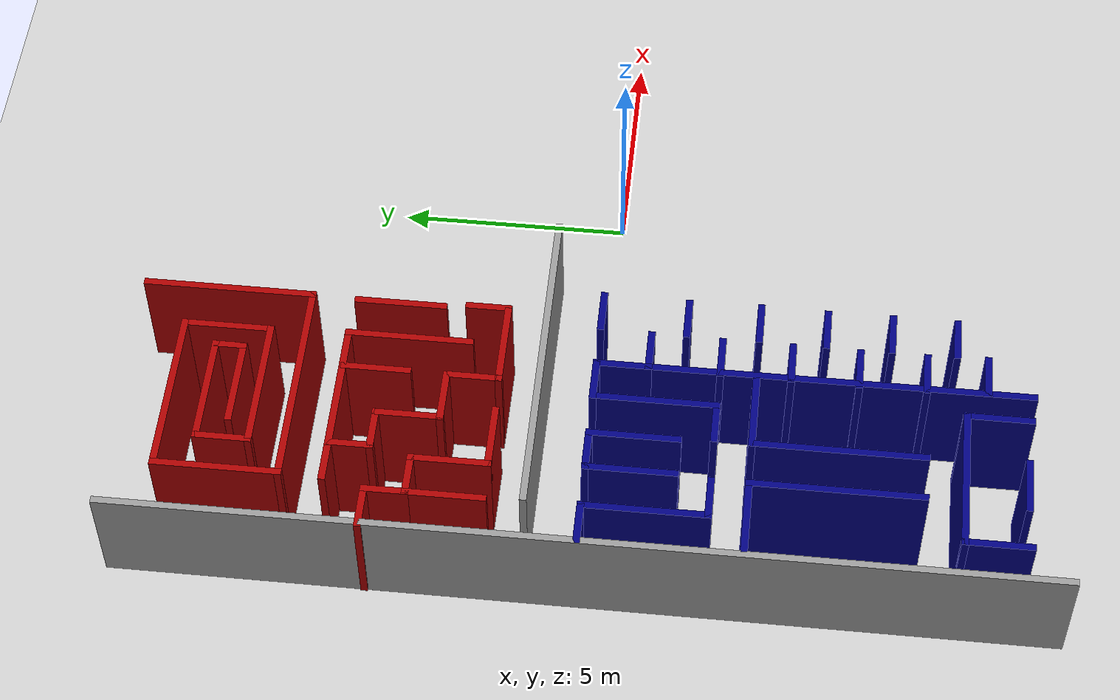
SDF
<sdf version="1.7">
 <world name="default">
  <model name="ground_plane">
   <static>1</static>
   <link name="link">
    <collision name="collision">
     <geometry><plane><normal>0 0 1</normal><size>100 100</size></plane></geometry>
     <surface><friction><ode><mu>100</mu><mu2>50</mu2></ode></friction></surface>
    </collision>
    <visual name="visual">
     <cast_shadows>0</cast_shadows>
     <geometry><plane><normal>0 0 1</normal><size>100 100</size></plane></geometry>
     <material>
      <script><uri>file://media/materials/scripts/gazebo.material</uri><name>Gazebo/Grey</name></script>
     </material>
    </visual>
   </link>
  </model>
  <model name="labyrinthe">
   <pose>-0.001061 -0.00174 0 0 -0 0</pose>
   <link name="Wall_100">
    <collision name="Wall_100_Collision">
     <geometry><box><size>1 0.15 2.5</size></box></geometry>
     <pose>0 0 1.25 0 -0 0</pose>
    </collision>
    <visual name="Wall_100_Visual">
     <pose>0 0 1.25 0 -0 0</pose>
     <geometry><box><size>1 0.15 2.5</size></box></geometry>
     <material>
      <script><uri>file://media/materials/scripts/gazebo.material</uri><name>Gazebo/Grey</name></script>
      <ambient>0.666667 0 0 1</ambient>
     </material>
     <meta><layer>0</layer></meta>
    </visual>
    <pose>-4.27476 2.53254 0 0 -0 1.5708</pose>
   </link>
   <link name="Wall_102">
    <collision name="Wall_102_Collision">
     <geometry><box><size>2 0.15 2.5</size></box></geometry>
     <pose>0 0 1.25 0 -0 0</pose>
    </collision>
    <visual name="Wall_102_Visual">
     <pose>0 0 1.25 0 -0 0</pose>
     <geometry><box><size>2 0.15 2.5</size></box></geometry>
     <material>
      <script><uri>file://media/materials/scripts/gazebo.material</uri><name>Gazebo/Grey</name></script>
      <ambient>0.666667 0 0 1</ambient>
     </material>
     <meta><layer>0</layer></meta>
    </visual>
    <pose>-5.19976 2.10754 0 0 -0 3.14159</pose>
   </link>
   <link name="Wall_103">
    <collision name="Wall_103_Collision">
     <geometry><box><size>1.25 0.15 2.5</size></box></geometry>
     <pose>0 0 1.25 0 -0 0</pose>
    </collision>
    <visual name="Wall_103_Visual">
     <pose>0 0 1.25 0 -0 0</pose>
     <geometry><box><size>1.25 0.15 2.5</size></box></geometry>
     <material>
      <script><uri>file://media/materials/scripts/gazebo.material</uri><name>Gazebo/Grey</name></script>
      <ambient>0.666667 0 0 1</ambient>
     </material>
     <meta><layer>0</layer></meta>
    </visual>
    <pose>-6.12476 2.65754 0 0 -0 1.5708</pose>
   </link>
   <link name="Wall_104">
    <collision name="Wall_104_Collision">
     <geometry><box><size>1.25 0.15 2.5</size></box></geometry>
     <pose>0 0 1.25 0 -0 0</pose>
    </collision>
    <visual name="Wall_104_Visual">
     <pose>0 0 1.25 0 -0 0</pose>
     <geometry><box><size>1.25 0.15 2.5</size></box></geometry>
     <material>
      <script><uri>file://media/materials/scripts/gazebo.material</uri><name>Gazebo/Grey</name></script>
      <ambient>0.666667 0 0 1</ambient>
     </material>
     <meta><layer>0</layer></meta>
    </visual>
    <pose>-6.67476 3.20754 0 0 -0 3.14159</pose>
   </link>
   <link name="Wall_105">
    <collision name="Wall_105_Collision">
     <geometry><box><size>1.5 0.15 2.5</size></box></geometry>
     <pose>0 0 1.25 0 -0 0</pose>
    </collision>
    <visual name="Wall_105_Visual">
     <pose>0 0 1.25 0 -0 0</pose>
     <geometry><box><size>1.5 0.15 2.5</size></box></geometry>
     <material>
      <script><uri>file://media/materials/scripts/gazebo.material</uri><name>Gazebo/Grey</name></script>
      <ambient>0.666667 0 0 1</ambient>
     </material>
     <meta><layer>0</layer></meta>
    </visual>
    <pose>-7.22476 3.88254 0 0 -0 1.5708</pose>
   </link>
   <link name="Wall_106">
    <collision name="Wall_106_Collision">
     <geometry><box><size>1 0.15 2.5</size></box></geometry>
     <pose>0 0 1.25 0 -0 0</pose>
    </collision>
    <visual name="Wall_106_Visual">
     <pose>0 0 1.25 0 -0 0</pose>
     <geometry><box><size>1 0.15 2.5</size></box></geometry>
     <material>
      <script><uri>file://media/materials/scripts/gazebo.material</uri><name>Gazebo/Grey</name></script>
      <ambient>0.666667 0 0 1</ambient>
     </material>
     <meta><layer>0</layer></meta>
    </visual>
    <pose>-7.64976 4.55754 0 0 -0 3.14159</pose>
   </link>
   <link name="Wall_107">
    <collision name="Wall_107_Collision">
     <geometry><box><size>1 0.15 2.5</size></box></geometry>
     <pose>0 0 1.25 0 -0 0</pose>
    </collision>
    <visual name="Wall_107_Visual">
     <pose>0 0 1.25 0 -0 0</pose>
     <geometry><box><size>1 0.15 2.5</size></box></geometry>
     <material>
      <script><uri>file://media/materials/scripts/gazebo.material</uri><name>Gazebo/Grey</name></script>
      <ambient>0.666667 0 0 1</ambient>
     </material>
     <meta><layer>0</layer></meta>
    </visual>
    <pose>-8.07476 4.98254 0 0 -0 1.5708</pose>
   </link>
   <link name="Wall_108">
    <collision name="Wall_108_Collision">
     <geometry><box><size>1 0.15 2.5</size></box></geometry>
     <pose>0 0 1.25 0 -0 0</pose>
    </collision>
    <visual name="Wall_108_Visual">
     <pose>0 0 1.25 0 -0 0</pose>
     <geometry><box><size>1 0.15 2.5</size></box></geometry>
     <material>
      <script><uri>file://media/materials/scripts/gazebo.material</uri><name>Gazebo/Grey</name></script>
      <ambient>0.666667 0 0 1</ambient>
     </material>
     <meta><layer>0</layer></meta>
    </visual>
    <pose>-8.51299 5.42076 0 0 -0 3.14159</pose>
   </link>
   <link name="Wall_110">
    <collision name="Wall_110_Collision">
     <geometry><box><size>1 0.15 2.5</size></box></geometry>
     <pose>0 0 1.25 0 -0 0</pose>
    </collision>
    <visual name="Wall_110_Visual">
     <pose>0 0 1.25 0 -0 0</pose>
     <geometry><box><size>1 0.15 2.5</size></box></geometry>
     <material>
      <script><uri>file://media/materials/scripts/gazebo.material</uri><name>Gazebo/Grey</name></script>
      <ambient>0.666667 0 0 1</ambient>
     </material>
     <meta><layer>0</layer></meta>
    </visual>
    <pose>-9.56191 4.52771 0 0 -0 0</pose>
   </link>
   <link name="Wall_111">
    <collision name="Wall_111_Collision">
     <geometry><box><size>1 0.15 2.5</size></box></geometry>
     <pose>0 0 1.25 0 -0 0</pose>
    </collision>
    <visual name="Wall_111_Visual">
     <pose>0 0 1.25 0 -0 0</pose>
     <geometry><box><size>1 0.15 2.5</size></box></geometry>
     <material>
      <script><uri>file://media/materials/scripts/gazebo.material</uri><name>Gazebo/Grey</name></script>
      <ambient>0.666667 0 0 1</ambient>
     </material>
     <meta><layer>0</layer></meta>
    </visual>
    <pose>-9.13691 4.10271 0 0 -0 -1.5708</pose>
   </link>
   <link name="Wall_112">
    <collision name="Wall_112_Collision">
     <geometry><box><size>1 0.15 2.5</size></box></geometry>
     <pose>0 0 1.25 0 -0 0</pose>
    </collision>
    <visual name="Wall_112_Visual">
     <pose>0 0 1.25 0 -0 0</pose>
     <geometry><box><size>1 0.15 2.5</size></box></geometry>
     <material>
      <script><uri>file://media/materials/scripts/gazebo.material</uri><name>Gazebo/Grey</name></script>
      <ambient>0.666667 0 0 1</ambient>
     </material>
     <meta><layer>0</layer></meta>
    </visual>
    <pose>-8.71191 3.67771 0 0 -0 0</pose>
   </link>
   <link name="Wall_113">
    <collision name="Wall_113_Collision">
     <geometry><box><size>1.75 0.15 2.5</size></box></geometry>
     <pose>0 0 1.25 0 -0 0</pose>
    </collision>
    <visual name="Wall_113_Visual">
     <pose>0 0 1.25 0 -0 0</pose>
     <geometry><box><size>1.75 0.15 2.5</size></box></geometry>
     <material>
      <script><uri>file://media/materials/scripts/gazebo.material</uri><name>Gazebo/Grey</name></script>
      <ambient>0.666667 0 0 1</ambient>
     </material>
     <meta><layer>0</layer></meta>
    </visual>
    <pose>-8.28691 2.87771 0 0 -0 -1.5708</pose>
   </link>
   <link name="Wall_114">
    <collision name="Wall_114_Collision">
     <geometry><box><size>1.5 0.15 2.5</size></box></geometry>
     <pose>0 0 1.25 0 -0 0</pose>
    </collision>
    <visual name="Wall_114_Visual">
     <pose>0 0 1.25 0 -0 0</pose>
     <geometry><box><size>1.5 0.15 2.5</size></box></geometry>
     <material>
      <script><uri>file://media/materials/scripts/gazebo.material</uri><name>Gazebo/Grey</name></script>
      <ambient>0.666667 0 0 1</ambient>
     </material>
     <meta><layer>0</layer></meta>
    </visual>
    <pose>-7.61191 2.07771 0 0 -0 0</pose>
   </link>
   <link name="Wall_116">
    <collision name="Wall_116_Collision">
     <geometry><box><size>1.75 0.15 2.5</size></box></geometry>
     <pose>0 0 1.25 0 -0 0</pose>
    </collision>
    <visual name="Wall_116_Visual">
     <pose>0 0 1.25 0 -0 0</pose>
     <geometry><box><size>1.75 0.15 2.5</size></box></geometry>
     <material>
      <script><uri>file://media/materials/scripts/gazebo.material</uri><name>Gazebo/Grey</name></script>
      <ambient>0.666667 0 0 1</ambient>
     </material>
     <meta><layer>0</layer></meta>
    </visual>
    <pose>-9.13691 2.87771 0 0 -0 -1.5708</pose>
   </link>
   <link name="Wall_118">
    <collision name="Wall_118_Collision">
     <geometry><box><size>3 0.15 2.5</size></box></geometry>
     <pose>0 0 1.25 0 -0 0</pose>
    </collision>
    <visual name="Wall_118_Visual">
     <pose>0 0 1.25 0 -0 0</pose>
     <geometry><box><size>3 0.15 2.5</size></box></geometry>
     <material>
      <script><uri>file://media/materials/scripts/gazebo.material</uri><name>Gazebo/Grey</name></script>
      <ambient>0.666667 0 0 1</ambient>
     </material>
     <meta><layer>0</layer></meta>
    </visual>
    <pose>-6.66299 5.42076 0 0 -0 0</pose>
   </link>
   <link name="Wall_119">
    <collision name="Wall_119_Collision">
     <geometry><box><size>2.75 0.15 2.5</size></box></geometry>
     <pose>0 0 1.25 0 -0 0</pose>
    </collision>
    <visual name="Wall_119_Visual">
     <pose>0 0 1.25 0 -0 0</pose>
     <geometry><box><size>2.75 0.15 2.5</size></box></geometry>
     <material>
      <script><uri>file://media/materials/scripts/gazebo.material</uri><name>Gazebo/Grey</name></script>
      <ambient>0.666667 0 0 1</ambient>
     </material>
     <meta><layer>0</layer></meta>
    </visual>
    <pose>-5.23799 4.12076 0 0 -0 -1.5708</pose>
   </link>
   <link name="Wall_121">
    <collision name="Wall_121_Collision">
     <geometry><box><size>1.5 0.15 2.5</size></box></geometry>
     <pose>0 0 1.25 0 -0 0</pose>
    </collision>
    <visual name="Wall_121_Visual">
     <pose>0 0 1.25 0 -0 0</pose>
     <geometry><box><size>1.5 0.15 2.5</size></box></geometry>
     <material>
      <script><uri>file://media/materials/scripts/gazebo.material</uri><name>Gazebo/Grey</name></script>
      <ambient>0.666667 0 0 1</ambient>
     </material>
     <meta><layer>0</layer></meta>
    </visual>
    <pose>-6.11199 4.71234 0 0 -0 -1.5708</pose>
   </link>
   <link name="Wall_126">
    <collision name="Wall_126_Collision">
     <geometry><box><size>1 0.15 2.5</size></box></geometry>
     <pose>0 0 1.25 0 -0 0</pose>
    </collision>
    <visual name="Wall_126_Visual">
     <pose>0 0 1.25 0 -0 0</pose>
     <geometry><box><size>1 0.15 2.5</size></box></geometry>
     <material>
      <script><uri>file://media/materials/scripts/gazebo.material</uri><name>Gazebo/Grey</name></script>
      <ambient>0 0 0.498039 1</ambient>
     </material>
     <meta><layer>0</layer></meta>
    </visual>
    <pose>-4.14326 0.097337 0 0 -0 3.14159</pose>
   </link>
   <link name="Wall_128">
    <collision name="Wall_128_Collision">
     <geometry><box><size>1 0.15 2.5</size></box></geometry>
     <pose>0 0 1.25 0 -0 0</pose>
    </collision>
    <visual name="Wall_128_Visual">
     <pose>0 0 1.25 0 -0 0</pose>
     <geometry><box><size>1 0.15 2.5</size></box></geometry>
     <material>
      <script><uri>file://media/materials/scripts/gazebo.material</uri><name>Gazebo/Grey</name></script>
      <ambient>0 0 0.498039 1</ambient>
     </material>
     <meta><layer>0</layer></meta>
    </visual>
    <pose>-5.94186 0.097337 0 0 -0 3.14159</pose>
   </link>
   <link name="Wall_130">
    <collision name="Wall_130_Collision">
     <geometry><box><size>1 0.15 2.5</size></box></geometry>
     <pose>0 0 1.25 0 -0 0</pose>
    </collision>
    <visual name="Wall_130_Visual">
     <pose>0 0 1.25 0 -0 0</pose>
     <geometry><box><size>1 0.15 2.5</size></box></geometry>
     <material>
      <script><uri>file://media/materials/scripts/gazebo.material</uri><name>Gazebo/Grey</name></script>
      <ambient>0 0 0.498039 1</ambient>
     </material>
     <meta><layer>0</layer></meta>
    </visual>
    <pose>-7.72724 0.084112 0 0 -0 3.14159</pose>
   </link>
   <link name="Wall_132">
    <collision name="Wall_132_Collision">
     <geometry><box><size>1 0.15 2.5</size></box></geometry>
     <pose>0 0 1.25 0 -0 0</pose>
    </collision>
    <visual name="Wall_132_Visual">
     <pose>0 0 1.25 0 -0 0</pose>
     <geometry><box><size>1 0.15 2.5</size></box></geometry>
     <material>
      <script><uri>file://media/materials/scripts/gazebo.material</uri><name>Gazebo/Grey</name></script>
      <ambient>0 0 0.498039 1</ambient>
     </material>
     <meta><layer>0</layer></meta>
    </visual>
    <pose>-9.52224 0.084112 0 0 -0 0</pose>
   </link>
   <link name="Wall_145">
    <collision name="Wall_145_Collision">
     <geometry><box><size>1.25 0.15 2.5</size></box></geometry>
     <pose>0 0 1.25 0 -0 0</pose>
    </collision>
    <visual name="Wall_145_Visual">
     <pose>0 0 1.25 0 -0 0</pose>
     <geometry><box><size>1.25 0.15 2.5</size></box></geometry>
     <material>
      <script><uri>file://media/materials/scripts/gazebo.material</uri><name>Gazebo/Grey</name></script>
      <ambient>0 0 0.498039 1</ambient>
     </material>
     <meta><layer>0</layer></meta>
    </visual>
    <pose>-5.51686 -0.452663 0 0 -0 -1.5708</pose>
   </link>
   <link name="Wall_146">
    <collision name="Wall_146_Collision">
     <geometry><box><size>1 0.15 2.5</size></box></geometry>
     <pose>0 0 1.25 0 -0 0</pose>
    </collision>
    <visual name="Wall_146_Visual">
     <pose>0 0 1.25 0 -0 0</pose>
     <geometry><box><size>1 0.15 2.5</size></box></geometry>
     <material>
      <script><uri>file://media/materials/scripts/gazebo.material</uri><name>Gazebo/Grey</name></script>
      <ambient>0 0 0.498039 1</ambient>
     </material>
     <meta><layer>0</layer></meta>
    </visual>
    <pose>-5.09186 -1.00266 0 0 -0 0</pose>
   </link>
   <link name="Wall_148">
    <collision name="Wall_148_Collision">
     <geometry><box><size>1 0.15 2.5</size></box></geometry>
     <pose>0 0 1.25 0 -0 0</pose>
    </collision>
    <visual name="Wall_148_Visual">
     <pose>0 0 1.25 0 -0 0</pose>
     <geometry><box><size>1 0.15 2.5</size></box></geometry>
     <material>
      <script><uri>file://media/materials/scripts/gazebo.material</uri><name>Gazebo/Grey</name></script>
      <ambient>0 0 0.498039 1</ambient>
     </material>
     <meta><layer>0</layer></meta>
    </visual>
    <pose>-4.16971 -1.74094 0 0 -0 3.14159</pose>
   </link>
   <link name="Wall_150">
    <collision name="Wall_150_Collision">
     <geometry><box><size>8.25 0.15 2.5</size></box></geometry>
     <pose>0 0 1.25 0 -0 0</pose>
    </collision>
    <visual name="Wall_150_Visual">
     <pose>0 0 1.25 0 -0 0</pose>
     <geometry><box><size>8.25 0.15 2.5</size></box></geometry>
     <material>
      <script><uri>file://media/materials/scripts/gazebo.material</uri><name>Gazebo/Grey</name></script>
      <ambient>0 0 0.498039 1</ambient>
     </material>
     <meta><layer>0</layer></meta>
    </visual>
    <pose>-5.51686 -5.05266 0 0 -0 -1.5708</pose>
   </link>
   <link name="Wall_152">
    <collision name="Wall_152_Collision">
     <geometry><box><size>1 0.15 2.5</size></box></geometry>
     <pose>0 0 1.25 0 -0 0</pose>
    </collision>
    <visual name="Wall_152_Visual">
     <pose>0 0 1.25 0 -0 0</pose>
     <geometry><box><size>1 0.15 2.5</size></box></geometry>
     <material>
      <script><uri>file://media/materials/scripts/gazebo.material</uri><name>Gazebo/Grey</name></script>
      <ambient>0 0 0.498039 1</ambient>
     </material>
     <meta><layer>0</layer></meta>
    </visual>
    <pose>-5.11831 -2.52121 0 0 -0 0</pose>
   </link>
   <link name="Wall_154">
    <collision name="Wall_154_Collision">
     <geometry><box><size>1 0.15 2.5</size></box></geometry>
     <pose>0 0 1.25 0 -0 0</pose>
    </collision>
    <visual name="Wall_154_Visual">
     <pose>0 0 1.25 0 -0 0</pose>
     <geometry><box><size>1 0.15 2.5</size></box></geometry>
     <material>
      <script><uri>file://media/materials/scripts/gazebo.material</uri><name>Gazebo/Grey</name></script>
      <ambient>0 0 0.498039 1</ambient>
     </material>
     <meta><layer>0</layer></meta>
    </visual>
    <pose>-4.14326 -3.28826 0 0 -0 3.14159</pose>
   </link>
   <link name="Wall_156">
    <collision name="Wall_156_Collision">
     <geometry><box><size>1 0.15 2.5</size></box></geometry>
     <pose>0 0 1.25 0 -0 0</pose>
    </collision>
    <visual name="Wall_156_Visual">
     <pose>0 0 1.25 0 -0 0</pose>
     <geometry><box><size>1 0.15 2.5</size></box></geometry>
     <material>
      <script><uri>file://media/materials/scripts/gazebo.material</uri><name>Gazebo/Grey</name></script>
      <ambient>0 0 0.498039 1</ambient>
     </material>
     <meta><layer>0</layer></meta>
    </visual>
    <pose>-5.11831 -4.01564 0 0 -0 0</pose>
   </link>
   <link name="Wall_158">
    <collision name="Wall_158_Collision">
     <geometry><box><size>1 0.15 2.5</size></box></geometry>
     <pose>0 0 1.25 0 -0 0</pose>
    </collision>
    <visual name="Wall_158_Visual">
     <pose>0 0 1.25 0 -0 0</pose>
     <geometry><box><size>1 0.15 2.5</size></box></geometry>
     <material>
      <script><uri>file://media/materials/scripts/gazebo.material</uri><name>Gazebo/Grey</name></script>
      <ambient>0 0 0.498039 1</ambient>
     </material>
     <meta><layer>0</layer></meta>
    </visual>
    <pose>-4.16971 -4.71656 0 0 -0 3.14159</pose>
   </link>
   <link name="Wall_160">
    <collision name="Wall_160_Collision">
     <geometry><box><size>1 0.15 2.5</size></box></geometry>
     <pose>0 0 1.25 0 -0 0</pose>
    </collision>
    <visual name="Wall_160_Visual">
     <pose>0 0 1.25 0 -0 0</pose>
     <geometry><box><size>1 0.15 2.5</size></box></geometry>
     <material>
      <script><uri>file://media/materials/scripts/gazebo.material</uri><name>Gazebo/Grey</name></script>
      <ambient>0 0 0.498039 1</ambient>
     </material>
     <meta><layer>0</layer></meta>
    </visual>
    <pose>-5.13154 -5.44394 0 0 -0 0</pose>
   </link>
   <link name="Wall_162">
    <collision name="Wall_162_Collision">
     <geometry><box><size>1 0.15 2.5</size></box></geometry>
     <pose>0 0 1.25 0 -0 0</pose>
    </collision>
    <visual name="Wall_162_Visual">
     <pose>0 0 1.25 0 -0 0</pose>
     <geometry><box><size>1 0.15 2.5</size></box></geometry>
     <material>
      <script><uri>file://media/materials/scripts/gazebo.material</uri><name>Gazebo/Grey</name></script>
      <ambient>0 0 0.498039 1</ambient>
     </material>
     <meta><layer>0</layer></meta>
    </visual>
    <pose>-4.15649 -6.10519 0 0 -0 3.14159</pose>
   </link>
   <link name="Wall_164">
    <collision name="Wall_164_Collision">
     <geometry><box><size>1 0.15 2.5</size></box></geometry>
     <pose>0 0 1.25 0 -0 0</pose>
    </collision>
    <visual name="Wall_164_Visual">
     <pose>0 0 1.25 0 -0 0</pose>
     <geometry><box><size>1 0.15 2.5</size></box></geometry>
     <material>
      <script><uri>file://media/materials/scripts/gazebo.material</uri><name>Gazebo/Grey</name></script>
      <ambient>0 0 0.498039 1</ambient>
     </material>
     <meta><layer>0</layer></meta>
    </visual>
    <pose>-5.11831 -6.85901 0 0 -0 0</pose>
   </link>
   <link name="Wall_167">
    <collision name="Wall_167_Collision">
     <geometry><box><size>1 0.15 2.5</size></box></geometry>
     <pose>0 0 1.25 0 -0 0</pose>
    </collision>
    <visual name="Wall_167_Visual">
     <pose>0 0 1.25 0 -0 0</pose>
     <geometry><box><size>1 0.15 2.5</size></box></geometry>
     <material>
      <script><uri>file://media/materials/scripts/gazebo.material</uri><name>Gazebo/Grey</name></script>
      <ambient>0 0 0.498039 1</ambient>
     </material>
     <meta><layer>0</layer></meta>
    </visual>
    <pose>-4.15649 -7.48059 0 0 -0 3.14159</pose>
   </link>
   <link name="Wall_169">
    <collision name="Wall_169_Collision">
     <geometry><box><size>1 0.15 2.5</size></box></geometry>
     <pose>0 0 1.25 0 -0 0</pose>
    </collision>
    <visual name="Wall_169_Visual">
     <pose>0 0 1.25 0 -0 0</pose>
     <geometry><box><size>1 0.15 2.5</size></box></geometry>
     <material>
      <script><uri>file://media/materials/scripts/gazebo.material</uri><name>Gazebo/Grey</name></script>
      <ambient>0 0 0.498039 1</ambient>
     </material>
     <meta><layer>0</layer></meta>
    </visual>
    <pose>-5.06541 -8.14184 0 0 -0 0</pose>
   </link>
   <link name="Wall_173">
    <collision name="Wall_173_Collision">
     <geometry><box><size>2.75 0.15 2.5</size></box></geometry>
     <pose>0 0 1.25 0 -0 0</pose>
    </collision>
    <visual name="Wall_173_Visual">
     <pose>0 0 1.25 0 -0 0</pose>
     <geometry><box><size>2.75 0.15 2.5</size></box></geometry>
     <material>
      <script><uri>file://media/materials/scripts/gazebo.material</uri><name>Gazebo/Grey</name></script>
      <ambient>0 0 0.498039 1</ambient>
     </material>
     <meta><layer>0</layer></meta>
    </visual>
    <pose>-6.36686 -1.20266 0 0 -0 -1.5708</pose>
   </link>
   <link name="Wall_174">
    <collision name="Wall_174_Collision">
     <geometry><box><size>1 0.15 2.5</size></box></geometry>
     <pose>0 0 1.25 0 -0 0</pose>
    </collision>
    <visual name="Wall_174_Visual">
     <pose>0 0 1.25 0 -0 0</pose>
     <geometry><box><size>1 0.15 2.5</size></box></geometry>
     <material>
      <script><uri>file://media/materials/scripts/gazebo.material</uri><name>Gazebo/Grey</name></script>
      <ambient>0 0 0.498039 1</ambient>
     </material>
     <meta><layer>0</layer></meta>
    </visual>
    <pose>-6.79186 -2.50266 0 0 -0 3.14159</pose>
   </link>
   <link name="Wall_176">
    <collision name="Wall_176_Collision">
     <geometry><box><size>2.75 0.15 2.5</size></box></geometry>
     <pose>0 0 1.25 0 -0 0</pose>
    </collision>
    <visual name="Wall_176_Visual">
     <pose>0 0 1.25 0 -0 0</pose>
     <geometry><box><size>2.75 0.15 2.5</size></box></geometry>
     <material>
      <script><uri>file://media/materials/scripts/gazebo.material</uri><name>Gazebo/Grey</name></script>
      <ambient>0 0 0.498039 1</ambient>
     </material>
     <meta><layer>0</layer></meta>
    </visual>
    <pose>-9.09724 -1.21589 0 0 -0 -1.5708</pose>
   </link>
   <link name="Wall_177">
    <collision name="Wall_177_Collision">
     <geometry><box><size>1 0.15 2.5</size></box></geometry>
     <pose>0 0 1.25 0 -0 0</pose>
    </collision>
    <visual name="Wall_177_Visual">
     <pose>0 0 1.25 0 -0 0</pose>
     <geometry><box><size>1 0.15 2.5</size></box></geometry>
     <material>
      <script><uri>file://media/materials/scripts/gazebo.material</uri><name>Gazebo/Grey</name></script>
      <ambient>0 0 0.498039 1</ambient>
     </material>
     <meta><layer>0</layer></meta>
    </visual>
    <pose>-8.67224 -2.51589 0 0 -0 0</pose>
   </link>
   <link name="Wall_179">
    <collision name="Wall_179_Collision">
     <geometry><box><size>2 0.15 2.5</size></box></geometry>
     <pose>0 0 1.25 0 -0 0</pose>
    </collision>
    <visual name="Wall_179_Visual">
     <pose>0 0 1.25 0 -0 0</pose>
     <geometry><box><size>2 0.15 2.5</size></box></geometry>
     <material>
      <script><uri>file://media/materials/scripts/gazebo.material</uri><name>Gazebo/Grey</name></script>
      <ambient>0 0 0.498039 1</ambient>
     </material>
     <meta><layer>0</layer></meta>
    </visual>
    <pose>-8.15224 -0.840888 0 0 -0 -1.5708</pose>
   </link>
   <link name="Wall_181">
    <collision name="Wall_181_Collision">
     <geometry><box><size>2 0.15 2.5</size></box></geometry>
     <pose>0 0 1.25 0 -0 0</pose>
    </collision>
    <visual name="Wall_181_Visual">
     <pose>0 0 1.25 0 -0 0</pose>
     <geometry><box><size>2 0.15 2.5</size></box></geometry>
     <material>
      <script><uri>file://media/materials/scripts/gazebo.material</uri><name>Gazebo/Grey</name></script>
      <ambient>0 0 0.498039 1</ambient>
     </material>
     <meta><layer>0</layer></meta>
    </visual>
    <pose>-7.30224 -0.840888 0 0 -0 -1.5708</pose>
   </link>
   <link name="Wall_183">
    <collision name="Wall_183_Collision">
     <geometry><box><size>1.75 0.15 2.5</size></box></geometry>
     <pose>0 0 1.25 0 -0 0</pose>
    </collision>
    <visual name="Wall_183_Visual">
     <pose>0 0 1.25 0 -0 0</pose>
     <geometry><box><size>1.75 0.15 2.5</size></box></geometry>
     <material>
      <script><uri>file://media/materials/scripts/gazebo.material</uri><name>Gazebo/Grey</name></script>
      <ambient>0 0 0.498039 1</ambient>
     </material>
     <meta><layer>0</layer></meta>
    </visual>
    <pose>-6.44934 -3.28826 0 0 -0 0</pose>
   </link>
   <link name="Wall_185">
    <collision name="Wall_185_Collision">
     <geometry><box><size>1.75 0.15 2.5</size></box></geometry>
     <pose>0 0 1.25 0 -0 0</pose>
    </collision>
    <visual name="Wall_185_Visual">
     <pose>0 0 1.25 0 -0 0</pose>
     <geometry><box><size>1.75 0.15 2.5</size></box></geometry>
     <material>
      <script><uri>file://media/materials/scripts/gazebo.material</uri><name>Gazebo/Grey</name></script>
      <ambient>0 0 0.498039 1</ambient>
     </material>
     <meta><layer>0</layer></meta>
    </visual>
    <pose>-9.02799 -3.28826 0 0 -0 3.14159</pose>
   </link>
   <link name="Wall_187">
    <collision name="Wall_187_Collision">
     <geometry><box><size>3.75 0.15 2.5</size></box></geometry>
     <pose>0 0 1.25 0 -0 0</pose>
    </collision>
    <visual name="Wall_187_Visual">
     <pose>0 0 1.25 0 -0 0</pose>
     <geometry><box><size>3.75 0.15 2.5</size></box></geometry>
     <material>
      <script><uri>file://media/materials/scripts/gazebo.material</uri><name>Gazebo/Grey</name></script>
      <ambient>0 0 0.498039 1</ambient>
     </material>
     <meta><layer>0</layer></meta>
    </visual>
    <pose>-7.24934 -5.08826 0 0 -0 -1.5708</pose>
   </link>
   <link name="Wall_189">
    <collision name="Wall_189_Collision">
     <geometry><box><size>3.75 0.15 2.5</size></box></geometry>
     <pose>0 0 1.25 0 -0 0</pose>
    </collision>
    <visual name="Wall_189_Visual">
     <pose>0 0 1.25 0 -0 0</pose>
     <geometry><box><size>3.75 0.15 2.5</size></box></geometry>
     <material>
      <script><uri>file://media/materials/scripts/gazebo.material</uri><name>Gazebo/Grey</name></script>
      <ambient>0 0 0.498039 1</ambient>
     </material>
     <meta><layer>0</layer></meta>
    </visual>
    <pose>-8.22799 -5.08826 0 0 -0 -1.5708</pose>
   </link>
   <link name="Wall_19">
    <collision name="Wall_19_Collision">
     <geometry><box><size>20 0.15 2.5</size></box></geometry>
     <pose>0 0 1.25 0 -0 0</pose>
    </collision>
    <visual name="Wall_19_Visual">
     <pose>0 0 1.25 0 -0 0</pose>
     <geometry><box><size>20 0.15 2.5</size></box></geometry>
     <material>
      <script><uri>file://media/materials/scripts/gazebo.material</uri><name>Gazebo/Grey</name></script>
      <ambient>0 0 0 1</ambient>
     </material>
     <meta><layer>0</layer></meta>
    </visual>
    <pose>-9.95504 0.015532 0 0 -0 1.5708</pose>
   </link>
   <link name="Wall_191">
    <collision name="Wall_191_Collision">
     <geometry><box><size>3.25 0.15 2.5</size></box></geometry>
     <pose>0 0 1.25 0 -0 0</pose>
    </collision>
    <visual name="Wall_191_Visual">
     <pose>0 0 1.25 0 -0 0</pose>
     <geometry><box><size>3.25 0.15 2.5</size></box></geometry>
     <material>
      <script><uri>file://media/materials/scripts/gazebo.material</uri><name>Gazebo/Grey</name></script>
      <ambient>0 0 0.498039 1</ambient>
     </material>
     <meta><layer>0</layer></meta>
    </visual>
    <pose>-7.66986 -7.70541 0 0 -0 0</pose>
   </link>
   <link name="Wall_193">
    <collision name="Wall_193_Collision">
     <geometry><box><size>1.5 0.15 2.5</size></box></geometry>
     <pose>0 0 1.25 0 -0 0</pose>
    </collision>
    <visual name="Wall_193_Visual">
     <pose>0 0 1.25 0 -0 0</pose>
     <geometry><box><size>1.5 0.15 2.5</size></box></geometry>
     <material>
      <script><uri>file://media/materials/scripts/gazebo.material</uri><name>Gazebo/Grey</name></script>
      <ambient>0 0 0.498039 1</ambient>
     </material>
     <meta><layer>0</layer></meta>
    </visual>
    <pose>-9.21986 -8.38041 0 0 -0 -1.5708</pose>
   </link>
   <link name="Wall_195">
    <collision name="Wall_195_Collision">
     <geometry><box><size>1.5 0.15 2.5</size></box></geometry>
     <pose>0 0 1.25 0 -0 0</pose>
    </collision>
    <visual name="Wall_195_Visual">
     <pose>0 0 1.25 0 -0 0</pose>
     <geometry><box><size>1.5 0.15 2.5</size></box></geometry>
     <material>
      <script><uri>file://media/materials/scripts/gazebo.material</uri><name>Gazebo/Grey</name></script>
      <ambient>0 0 0.498039 1</ambient>
     </material>
     <meta><layer>0</layer></meta>
    </visual>
    <pose>-6.11986 -8.38041 0 0 -0 -1.5708</pose>
   </link>
   <link name="Wall_197">
    <collision name="Wall_197_Collision">
     <geometry><box><size>1.25 0.15 2.5</size></box></geometry>
     <pose>0 0 1.25 0 -0 0</pose>
    </collision>
    <visual name="Wall_197_Visual">
     <pose>0 0 1.25 0 -0 0</pose>
     <geometry><box><size>1.25 0.15 2.5</size></box></geometry>
     <material>
      <script><uri>file://media/materials/scripts/gazebo.material</uri><name>Gazebo/Grey</name></script>
      <ambient>0 0 0.498039 1</ambient>
     </material>
     <meta><layer>0</layer></meta>
    </visual>
    <pose>-7.73089 -9.00146 0 0 -0 0</pose>
   </link>
   <link name="Wall_55">
    <collision name="Wall_55_Collision">
     <geometry><box><size>7.25 0.15 2.5</size></box></geometry>
     <pose>0 0 1.25 0 -0 0</pose>
    </collision>
    <visual name="Wall_55_Visual">
     <pose>0 0 1.25 0 -0 0</pose>
     <geometry><box><size>7.25 0.15 2.5</size></box></geometry>
     <material>
      <script><uri>file://media/materials/scripts/gazebo.material</uri><name>Gazebo/Grey</name></script>
      <ambient>0 0 0 1</ambient>
     </material>
     <meta><layer>0</layer></meta>
    </visual>
    <pose>-5.48377 1.26373 0 0 -0 3.14159</pose>
   </link>
   <link name="Wall_73">
    <collision name="Wall_73_Collision">
     <geometry><box><size>3.75 0.15 2.5</size></box></geometry>
     <pose>0 0 1.25 0 -0 0</pose>
    </collision>
    <visual name="Wall_73_Visual">
     <pose>0 0 1.25 0 -0 0</pose>
     <geometry><box><size>3.75 0.15 2.5</size></box></geometry>
     <material>
      <script><uri>file://media/materials/scripts/gazebo.material</uri><name>Gazebo/Grey</name></script>
      <ambient>0.666667 0 0 1</ambient>
     </material>
     <meta><layer>0</layer></meta>
    </visual>
    <pose>-4.31339 8.13674 0 0 -0 -1.5708</pose>
   </link>
   <link name="Wall_86">
    <collision name="Wall_86_Collision">
     <geometry><box><size>2 0.15 2.5</size></box></geometry>
     <pose>0 0 1.25 0 -0 0</pose>
    </collision>
    <visual name="Wall_86_Visual">
     <pose>0 0 1.25 0 -0 0</pose>
     <geometry><box><size>2 0.15 2.5</size></box></geometry>
     <material>
      <script><uri>file://media/materials/scripts/gazebo.material</uri><name>Gazebo/Grey</name></script>
      <ambient>0.666667 0 0 1</ambient>
     </material>
     <meta><layer>0</layer></meta>
    </visual>
    <pose>-4.35306 4.42266 0 0 -0 -1.5708</pose>
   </link>
   <link name="Wall_89">
    <collision name="Wall_89_Collision">
     <geometry><box><size>4.75 0.15 2.5</size></box></geometry>
     <pose>0 0 1.25 0 -0 0</pose>
    </collision>
    <visual name="Wall_89_Visual">
     <pose>0 0 1.25 0 -0 0</pose>
     <geometry><box><size>4.75 0.15 2.5</size></box></geometry>
     <material>
      <script><uri>file://media/materials/scripts/gazebo.material</uri><name>Gazebo/Grey</name></script>
      <ambient>0.666667 0 0 1</ambient>
     </material>
     <meta><layer>0</layer></meta>
    </visual>
    <pose>-6.61339 6.33674 0 0 -0 3.14159</pose>
   </link>
   <link name="Wall_90">
    <collision name="Wall_90_Collision">
     <geometry><box><size>2.75 0.15 2.5</size></box></geometry>
     <pose>0 0 1.25 0 -0 0</pose>
    </collision>
    <visual name="Wall_90_Visual">
     <pose>0 0 1.25 0 -0 0</pose>
     <geometry><box><size>2.75 0.15 2.5</size></box></geometry>
     <material>
      <script><uri>file://media/materials/scripts/gazebo.material</uri><name>Gazebo/Grey</name></script>
      <ambient>0.666667 0 0 1</ambient>
     </material>
     <meta><layer>0</layer></meta>
    </visual>
    <pose>-8.91339 7.63674 0 0 -0 1.5708</pose>
   </link>
   <link name="Wall_91">
    <collision name="Wall_91_Collision">
     <geometry><box><size>3.75 0.15 2.5</size></box></geometry>
     <pose>0 0 1.25 0 -0 0</pose>
    </collision>
    <visual name="Wall_91_Visual">
     <pose>0 0 1.25 0 -0 0</pose>
     <geometry><box><size>3.75 0.15 2.5</size></box></geometry>
     <material>
      <script><uri>file://media/materials/scripts/gazebo.material</uri><name>Gazebo/Grey</name></script>
      <ambient>0.666667 0 0 1</ambient>
     </material>
     <meta><layer>0</layer></meta>
    </visual>
    <pose>-7.11339 8.93674 0 0 -0 0</pose>
   </link>
   <link name="Wall_92">
    <collision name="Wall_92_Collision">
     <geometry><box><size>2 0.15 2.5</size></box></geometry>
     <pose>0 0 1.25 0 -0 0</pose>
    </collision>
    <visual name="Wall_92_Visual">
     <pose>0 0 1.25 0 -0 0</pose>
     <geometry><box><size>2 0.15 2.5</size></box></geometry>
     <material>
      <script><uri>file://media/materials/scripts/gazebo.material</uri><name>Gazebo/Grey</name></script>
      <ambient>0.666667 0 0 1</ambient>
     </material>
     <meta><layer>0</layer></meta>
    </visual>
    <pose>-5.31339 8.01174 0 0 -0 -1.5708</pose>
   </link>
   <link name="Wall_93">
    <collision name="Wall_93_Collision">
     <geometry><box><size>3 0.15 2.5</size></box></geometry>
     <pose>0 0 1.25 0 -0 0</pose>
    </collision>
    <visual name="Wall_93_Visual">
     <pose>0 0 1.25 0 -0 0</pose>
     <geometry><box><size>3 0.15 2.5</size></box></geometry>
     <material>
      <script><uri>file://media/materials/scripts/gazebo.material</uri><name>Gazebo/Grey</name></script>
      <ambient>0.666667 0 0 1</ambient>
     </material>
     <meta><layer>0</layer></meta>
    </visual>
    <pose>-6.73839 7.08674 0 0 -0 3.14159</pose>
   </link>
   <link name="Wall_94">
    <collision name="Wall_94_Collision">
     <geometry><box><size>1.25 0.15 2.5</size></box></geometry>
     <pose>0 0 1.25 0 -0 0</pose>
    </collision>
    <visual name="Wall_94_Visual">
     <pose>0 0 1.25 0 -0 0</pose>
     <geometry><box><size>1.25 0.15 2.5</size></box></geometry>
     <material>
      <script><uri>file://media/materials/scripts/gazebo.material</uri><name>Gazebo/Grey</name></script>
      <ambient>0.666667 0 0 1</ambient>
     </material>
     <meta><layer>0</layer></meta>
    </visual>
    <pose>-8.16339 7.63674 0 0 -0 1.5708</pose>
   </link>
   <link name="Wall_95">
    <collision name="Wall_95_Collision">
     <geometry><box><size>2.5 0.15 2.5</size></box></geometry>
     <pose>0 0 1.25 0 -0 0</pose>
    </collision>
    <visual name="Wall_95_Visual">
     <pose>0 0 1.25 0 -0 0</pose>
     <geometry><box><size>2.5 0.15 2.5</size></box></geometry>
     <material>
      <script><uri>file://media/materials/scripts/gazebo.material</uri><name>Gazebo/Grey</name></script>
      <ambient>0.666667 0 0 1</ambient>
     </material>
     <meta><layer>0</layer></meta>
    </visual>
    <pose>-6.98839 8.18674 0 0 -0 0</pose>
   </link>
   <link name="Wall_96">
    <collision name="Wall_96_Collision">
     <geometry><box><size>0.75 0.15 2.5</size></box></geometry>
     <pose>0 0 1.25 0 -0 0</pose>
    </collision>
    <visual name="Wall_96_Visual">
     <pose>0 0 1.25 0 -0 0</pose>
     <geometry><box><size>0.75 0.15 2.5</size></box></geometry>
     <material>
      <script><uri>file://media/materials/scripts/gazebo.material</uri><name>Gazebo/Grey</name></script>
      <ambient>0.666667 0 0 1</ambient>
     </material>
     <meta><layer>0</layer></meta>
    </visual>
    <pose>-5.81339 7.88674 0 0 -0 -1.5708</pose>
   </link>
   <link name="Wall_97">
    <collision name="Wall_97_Collision">
     <geometry><box><size>2 0.15 2.5</size></box></geometry>
     <pose>0 0 1.25 0 -0 0</pose>
    </collision>
    <visual name="Wall_97_Visual">
     <pose>0 0 1.25 0 -0 0</pose>
     <geometry><box><size>2 0.15 2.5</size></box></geometry>
     <material>
      <script><uri>file://media/materials/scripts/gazebo.material</uri><name>Gazebo/Grey</name></script>
      <ambient>0.666667 0 0 1</ambient>
     </material>
     <meta><layer>0</layer></meta>
    </visual>
    <pose>-6.73839 7.58674 0 0 -0 3.14159</pose>
   </link>
   <static>1</static>
  </model>
 </world>
</sdf>
